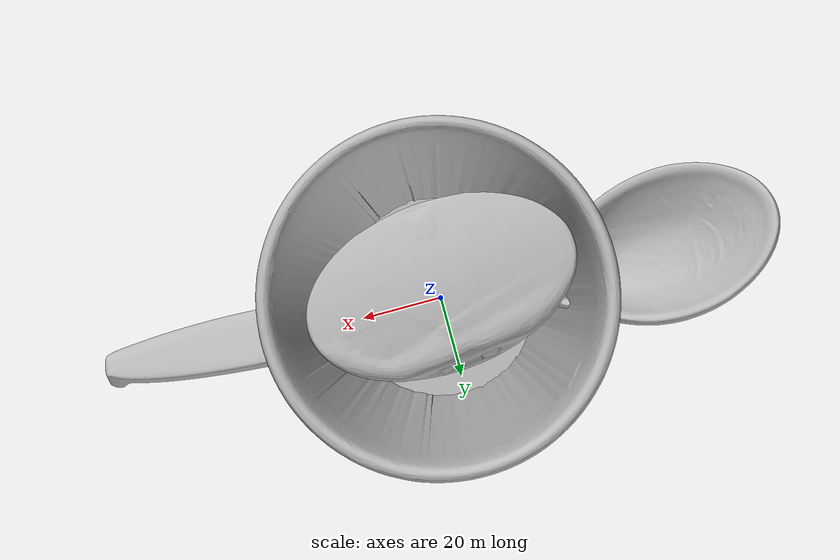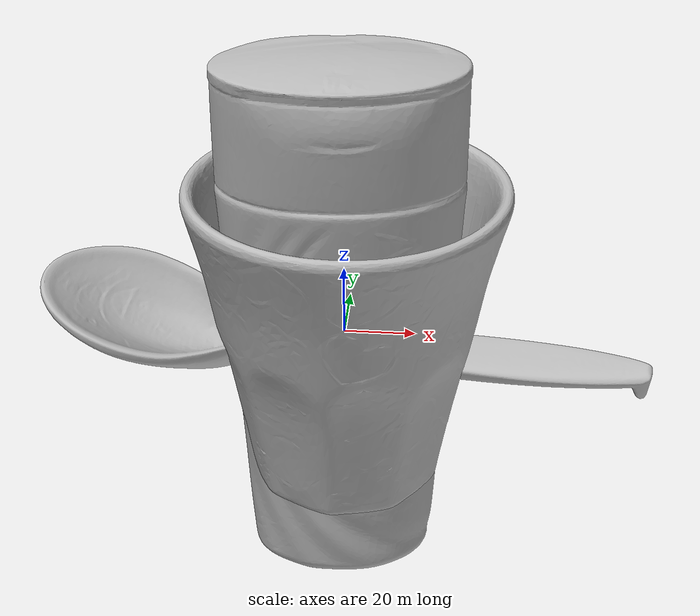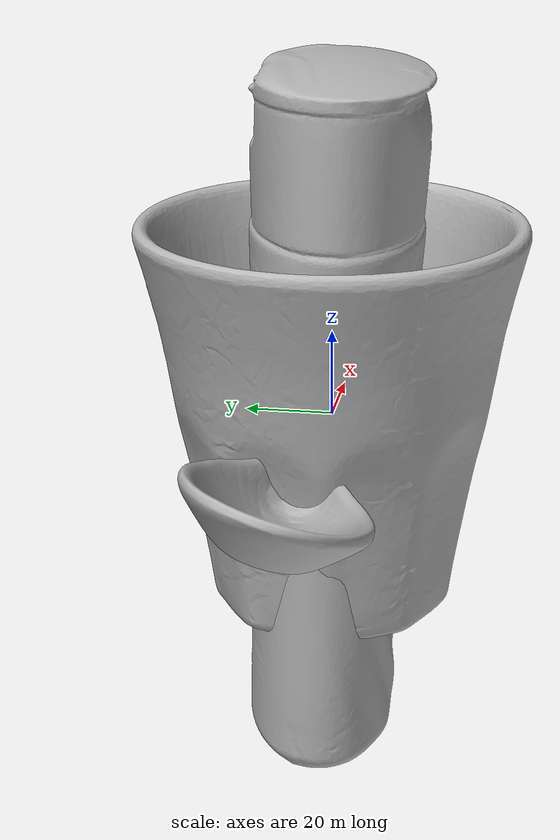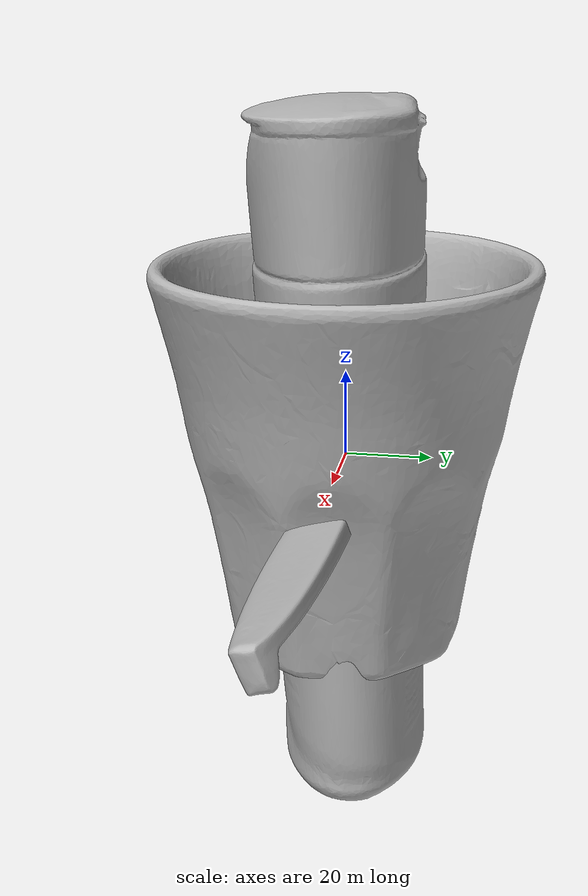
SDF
<sdf version="1.4">
 <world name="default">
  <light name="light1" type="point">
   <pose>0 0 1 0 0 0</pose>
   <diffuse>3 3 3 1</diffuse>
   <specular>3 3 3 1</specular>
  </light>
  <light name="light2" type="point">
   <pose>0 0.5 2 0 0 0</pose>
   <diffuse>1 1 1 1</diffuse>
   <specular>1 1 1 1</specular>
  </light>
  <light name="light3" type="point">
   <pose>0 0.5 2 0 0 0</pose>
   <diffuse>3 3 3 1</diffuse>
   <specular>3 3 3 1</specular>
  </light>
  <scene><ambient>0.7 0.7 0.7</ambient></scene>
  <model name="bottle1">
   <link name="link_bottle1">
    <collision name="default">
     <geometry>
      <mesh><uri>model://conditioner/collision_meshes/collision.obj</uri><scale>1.0 1.0 1.0</scale></mesh>
     </geometry>
     <surface><friction><ode><mu>0.5</mu><mu2>0.5</mu2></ode></friction></surface>
    </collision>
    <visual name="default">
     <geometry>
      <mesh><uri>model://conditioner/visual_meshes/visual.dae</uri><scale>1.0 1.0 1.0</scale></mesh>
     </geometry>
    </visual>
    <inertial>
     <mass>0.31316134333610535</mass>
     <pose>-0.00055994390277192 -0.0001729748910292983 0.004359682556241751 -0.005038373535624127 0.01530604069317056 0.015072338587352078</pose>
     <inertia>
      <ixx>0.0006812382</ixx>
      <iyy>0.000729753</iyy>
      <izz>0.000105037434</izz>
      <ixy>0</ixy>
      <ixz>0</ixz>
      <iyz>0</iyz>
     </inertia>
    </inertial>
   </link>
   <pose>-0.251015305519104 0.26703014969825745 0.081229567527771 0.036910261004983465 -0.015674222270127977 0.07683765628181631</pose>
  </model>
  <model name="bottle2">
   <link name="link_bottle2">
    <collision name="default">
     <geometry>
      <mesh><uri>model://pigeon/collision_meshes/collision.obj</uri><scale>1.0 1.0 1.0</scale></mesh>
     </geometry>
     <surface><friction><ode><mu>0.5</mu><mu2>0.5</mu2></ode></friction></surface>
    </collision>
    <visual name="default">
     <geometry><mesh><uri>model://pigeon/visual_meshes/visual.dae</uri><scale>1.0 1.0 1.0</scale></mesh></geometry>
    </visual>
    <inertial>
     <mass>0.6510184407234192</mass>
     <pose>-9.675473847892135e-05 -0.00019276776583865285 -0.01593620888888836 -0.011704407543161608 -0.0012978192378484078 -0.04198827283679603</pose>
     <inertia>
      <ixx>0.0016273881</ixx>
      <iyy>0.0017372583</iyy>
      <izz>0.00033475916</izz>
      <ixy>0</ixy>
      <ixz>0</ixz>
      <iyz>0</iyz>
     </inertia>
    </inertial>
   </link>
   <pose>-0.14000311493873596 0.240171417593956 0.0986451655626297 1.5167992351438997e-05 4.319501854324326e-06 -0.05243417142689185</pose>
  </model>
  <model name="silverware1">
   <link name="link_silverware1">
    <collision name="default">
     <geometry>
      <mesh><uri>model://doraemon_spoon/collision_meshes/collision.obj</uri><scale>1.0 1.0 1.0</scale></mesh>
     </geometry>
     <surface><friction><ode><mu>0.5</mu><mu2>0.5</mu2></ode></friction></surface>
    </collision>
    <visual name="default">
     <geometry>
      <mesh><uri>model://doraemon_spoon/visual_meshes/visual.dae</uri><scale>1.0 1.0 1.0</scale></mesh>
     </geometry>
    </visual>
    <inertial>
     <mass>0.020366016775369644</mass>
     <pose>-0.022165074944496155 -0.0006374584045261145 -0.0033325462136417627 -0.009147200915366215 0.0738041822243956 -0.014123826891092987</pose>
     <inertia>
      <ixx>1.5952605e-06</ixx>
      <iyy>4.5307766e-05</iyy>
      <izz>4.6078047e-05</izz>
      <ixy>0</ixy>
      <ixz>0</ixz>
      <iyz>0</iyz>
     </inertia>
    </inertial>
   </link>
   <pose>0.15967388451099396 0.2060379534959793 0.014739332720637321 0.27901976577720455 -0.010337287208697525 -0.049489366012028954</pose>
  </model>
  <model name="stationery1">
   <link name="link_stationery1">
    <collision name="default">
     <geometry>
      <mesh><uri>model://correction_fuid/collision_meshes/collision.obj</uri><scale>1.0 1.0 1.0</scale></mesh>
     </geometry>
     <surface><friction><ode><mu>0.5</mu><mu2>0.5</mu2></ode></friction></surface>
    </collision>
    <visual name="default">
     <geometry>
      <mesh><uri>model://correction_fuid/visual_meshes/visual.dae</uri><scale>1.0 1.0 1.0</scale></mesh>
     </geometry>
    </visual>
    <inertial>
     <mass>0.02487199380993843</mass>
     <pose>-0.00012557733862195164 -0.0009722901741042733 -0.001618212671019137 -0.010846607936808557 0.019488255039962172 -0.015992454917835536</pose>
     <inertia>
      <ixx>2.4088951e-05</ixx>
      <iyy>1.4578937e-06</iyy>
      <izz>2.4715917e-05</izz>
      <ixy>0</ixy>
      <ixz>0</ixz>
      <iyz>0</iyz>
     </inertia>
    </inertial>
   </link>
   <pose>0.299542099237442 0.3399756848812103 0.009632829576730728 -0.0017271373241819678 -0.05616759530338525 0.08327253971161</pose>
  </model>
  <model name="bowl1">
   <link name="link_bowl1">
    <collision name="default">
     <geometry>
      <mesh><uri>model://doraemon_bowl/collision_meshes/collision.obj</uri><scale>1.0 1.0 1.0</scale></mesh>
     </geometry>
     <surface><friction><ode><mu>0.5</mu><mu2>0.5</mu2></ode></friction></surface>
    </collision>
    <visual name="default">
     <geometry>
      <mesh><uri>model://doraemon_bowl/visual_meshes/visual.dae</uri><scale>1.0 1.0 1.0</scale></mesh>
     </geometry>
    </visual>
    <inertial>
     <mass>0.06713785231113434</mass>
     <pose>-0.014629548415541649 0.000485710974317044 -0.0020864871330559254 -0.005093962398800634 -0.10568405274446478 -0.026426476578293747</pose>
     <inertia>
      <ixx>9.309732e-05</ixx>
      <iyy>0.00012251528</iyy>
      <izz>0.00018024874</izz>
      <ixy>0</ixy>
      <ixz>0</ixz>
      <iyz>0</iyz>
     </inertia>
    </inertial>
   </link>
   <pose>0.28016409277915955 -0.38016587495803833 0.025905484333634377 0.00859782463452363 0.006343986052861442 9.202487181759411e-06</pose>
  </model>
  <model name="cup1">
   <link name="link_cup1">
    <collision name="default">
     <geometry>
      <mesh><uri>model://hello_kitty_cup/collision_meshes/collision.obj</uri><scale>1.0 1.0 1.0</scale></mesh>
     </geometry>
     <surface><friction><ode><mu>0.5</mu><mu2>0.5</mu2></ode></friction></surface>
    </collision>
    <visual name="default">
     <geometry>
      <mesh><uri>model://hello_kitty_cup/visual_meshes/visual.dae</uri><scale>1.0 1.0 1.0</scale></mesh>
     </geometry>
    </visual>
    <inertial>
     <mass>0.13384777307510376</mass>
     <pose>0.00027251095161773264 0.00027950218645855784 0.0030449770856648684 0.057791450277227645 0.007964955326408191 -0.02045228086216793</pose>
     <inertia>
      <ixx>0.0001843247</ixx>
      <iyy>0.0001863793</iyy>
      <izz>0.00015541737</izz>
      <ixy>0</ixy>
      <ixz>0</ixz>
      <iyz>0</iyz>
     </inertia>
    </inertial>
   </link>
   <pose>0.20040613412857056 -0.20961444079875946 0.04621627926826477 -0.0058799913983268596 0.010794974274007982 -3.365485802498497e-05</pose>
  </model>
  <model name="plate1">
   <link name="link_plate1">
    <collision name="default">
     <geometry>
      <mesh><uri>model://hello_kitty_plate/collision_meshes/collision.obj</uri><scale>1.0 1.0 1.0</scale></mesh>
     </geometry>
     <surface><friction><ode><mu>0.5</mu><mu2>0.5</mu2></ode></friction></surface>
    </collision>
    <visual name="default">
     <geometry>
      <mesh><uri>model://hello_kitty_plate/visual_meshes/visual.dae</uri><scale>1.0 1.0 1.0</scale></mesh>
     </geometry>
    </visual>
    <inertial>
     <mass>0.0821625292301178</mass>
     <pose>0.0073142931796610355 0.00028937371098436415 -0.0027947186026722193 -0.0001043184795654353 -0.007054440405958318 -0.014449014916312054</pose>
     <inertia>
      <ixx>0.00015843393</ixx>
      <iyy>0.00029901267</iyy>
      <izz>0.00045402072</izz>
      <ixy>0</ixy>
      <ixz>0</ixz>
      <iyz>0</iyz>
     </inertia>
    </inertial>
   </link>
   <pose>0.05002991110086441 -0.40004193782806396 0.008291449397802353 0.0004660487340797479 0.004173344889527945 -2.4758324876657013e-06</pose>
  </model>
 </world>
</sdf>
